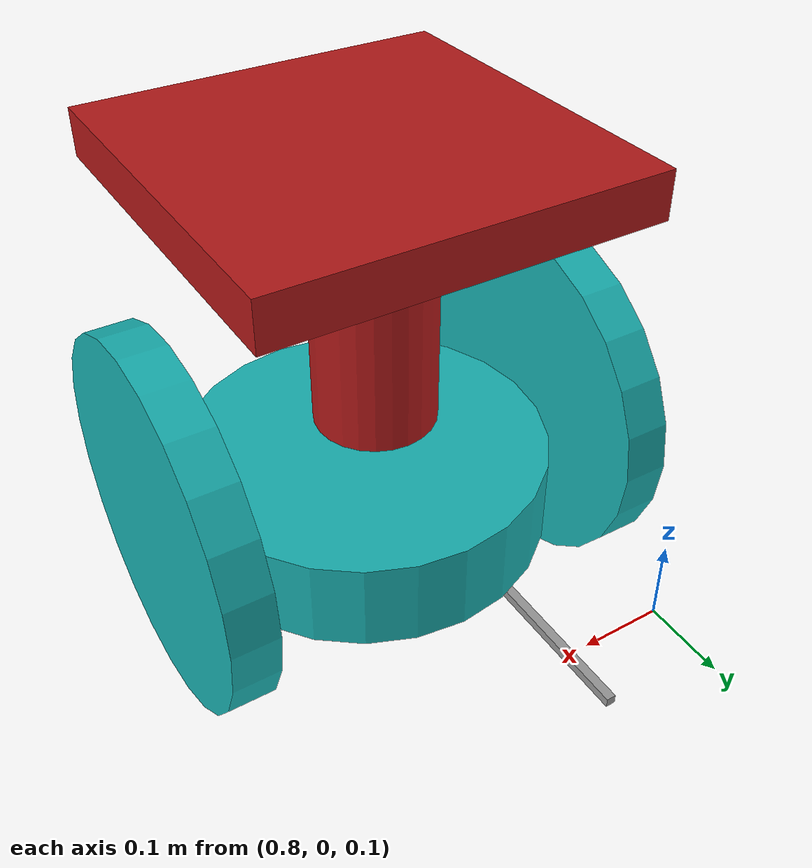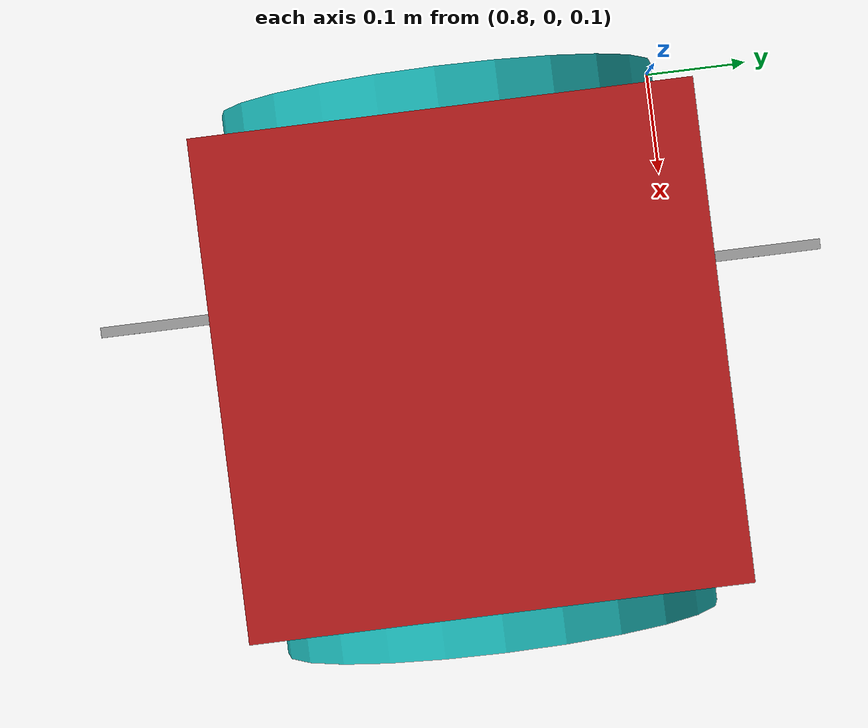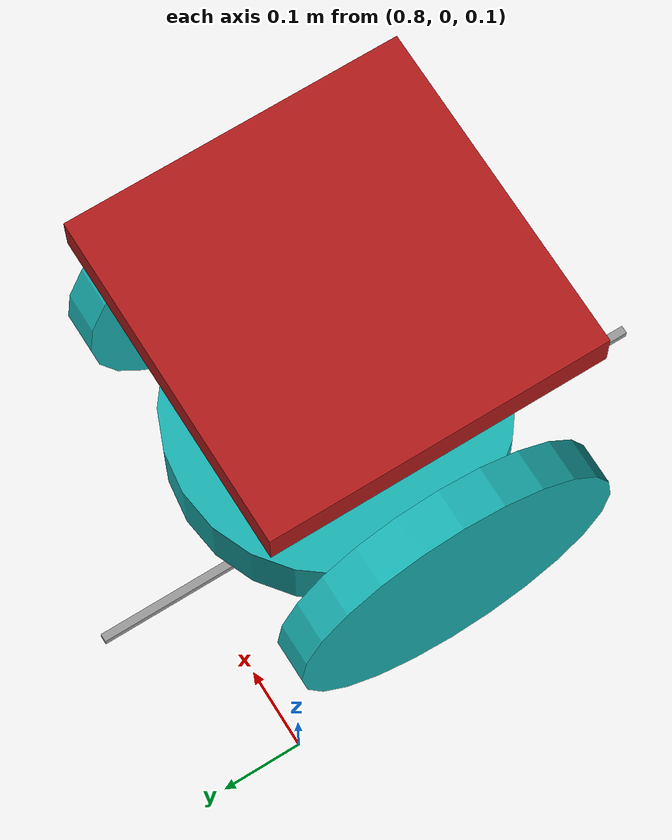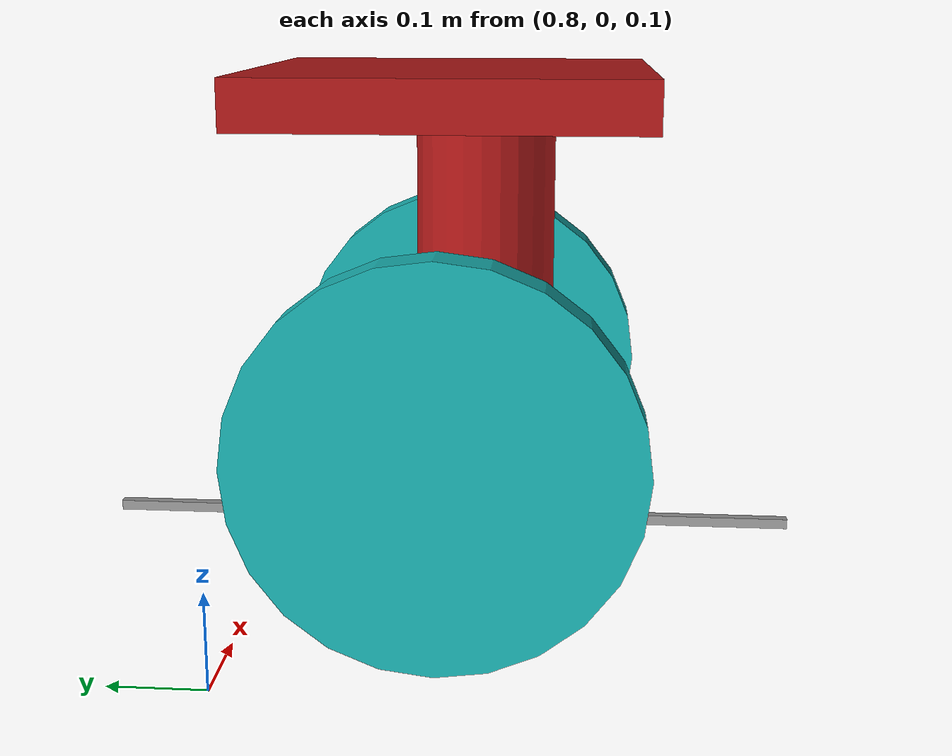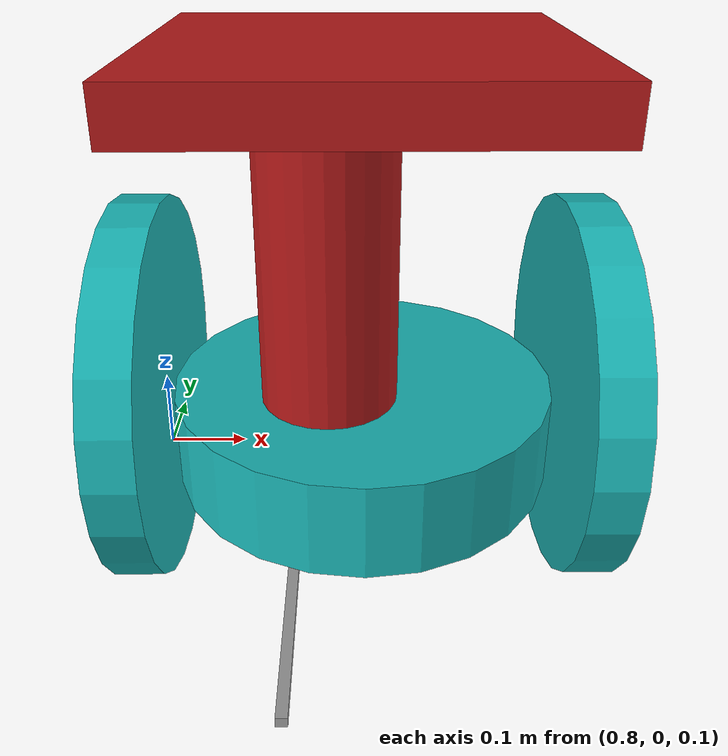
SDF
<?xml version='1.0'?>
<sdf version='1.6'>
  <model name='circlebot'>
    <link name='link_0'>
      <pose frame=''>1.06129 -0.214025 0.27147 0 -0 0</pose>
      <inertial>
        <mass>1</mass>
        <inertia>
          <ixx>0.145833</ixx>
          <ixy>0</ixy>
          <ixz>0</ixz>
          <iyy>0.145833</iyy>
          <iyz>0</iyz>
          <izz>0.125</izz>
        </inertia>
        <pose frame=''>0 0 0 0 -0 0</pose>
      </inertial>
      <self_collide>0</self_collide>
      <kinematic>0</kinematic>
      <visual name='visual'>
        <pose frame=''>0 0 0 0 -0 0</pose>
        <geometry>
          <cylinder>
            <radius>0.2</radius>
            <length>0.1</length>
          </cylinder>
        </geometry>
        <material>
          <lighting>1</lighting>
          <script>
            <uri>file://media/materials/scripts/gazebo.material</uri>
            <name>Gazebo/Grey</name>
          </script>
          <shader type='pixel'>
            <normal_map>__default__</normal_map>
          </shader>
          <ambient>0.3 0.7 0.7 1</ambient>
          <diffuse>0.1 0.7 0.7 1</diffuse>
          <specular>0.01 0.01 0.01 1</specular>
          <emissive>0 0 0 1</emissive>
        </material>
        <transparency>0</transparency>
        <cast_shadows>1</cast_shadows>
      </visual>
      <collision name='collision'>
        <laser_retro>0</laser_retro>
        <max_contacts>10</max_contacts>
        <pose frame=''>0 0 0 0 -0 0</pose>
        <geometry>
          <cylinder>
            <radius>0.2</radius>
            <length>0.1</length>
          </cylinder>
        </geometry>
        <surface>
          <friction>
            <ode>
              <mu>1</mu>
              <mu2>1</mu2>
              <fdir1>0 0 0</fdir1>
              <slip1>0</slip1>
              <slip2>0</slip2>
            </ode>
            <torsional>
              <coefficient>1</coefficient>
              <patch_radius>0</patch_radius>
              <surface_radius>0</surface_radius>
              <use_patch_radius>1</use_patch_radius>
              <ode>
                <slip>0</slip>
              </ode>
            </torsional>
          </friction>
          <bounce>
            <restitution_coefficient>0</restitution_coefficient>
            <threshold>1e+06</threshold>
          </bounce>
          <contact>
            <collide_without_contact>0</collide_without_contact>
            <collide_without_contact_bitmask>1</collide_without_contact_bitmask>
            <collide_bitmask>1</collide_bitmask>
            <ode>
              <soft_cfm>0</soft_cfm>
              <soft_erp>0.2</soft_erp>
              <kp>1e+13</kp>
              <kd>1</kd>
              <max_vel>0.01</max_vel>
              <min_depth>0</min_depth>
            </ode>
            <bullet>
              <split_impulse>1</split_impulse>
              <split_impulse_penetration_threshold>-0.01</split_impulse_penetration_threshold>
              <soft_cfm>0</soft_cfm>
              <soft_erp>0.2</soft_erp>
              <kp>1e+13</kp>
              <kd>1</kd>
            </bullet>
          </contact>
        </surface>
      </collision>
    </link>
    <link name='link_0_0'>
      <pose frame=''>0.993988 -0.214025 0.213031 -1.5708 0.010835 3e-06</pose>
      <inertial>
        <mass>1</mass>
        <inertia>
          <ixx>0.166667</ixx>
          <ixy>0</ixy>
          <ixz>0</ixz>
          <iyy>0.166667</iyy>
          <iyz>0</iyz>
          <izz>0.166667</izz>
        </inertia>
        <pose frame=''>0 0 0 0 -0 0</pose>
      </inertial>
      <self_collide>0</self_collide>
      <kinematic>0</kinematic>
      <visual name='visual'>
        <pose frame=''>0 0 0 0 -0 0</pose>
        <geometry>
          <box>
            <size>0.01 0.01 0.7</size>
          </box>
        </geometry>
        <material>
          <lighting>1</lighting>
          <script>
            <uri>file://media/materials/scripts/gazebo.material</uri>
            <name>Gazebo/Grey</name>
          </script>
          <shader type='pixel'>
            <normal_map>__default__</normal_map>
          </shader>
          <ambient>0.3 0.3 0.3 1</ambient>
          <diffuse>0.7 0.7 0.7 1</diffuse>
          <specular>0.01 0.01 0.01 1</specular>
          <emissive>0 0 0 1</emissive>
        </material>
        <transparency>0</transparency>
        <cast_shadows>1</cast_shadows>
      </visual>
      <collision name='collision'>
        <laser_retro>0</laser_retro>
        <max_contacts>10</max_contacts>
        <pose frame=''>0 0 0 0 -0 0</pose>
        <geometry>
          <box>
            <size>0.01 0.01 0.7</size>
          </box>
        </geometry>
        <surface>
          <friction>
            <ode>
              <mu>1</mu>
              <mu2>1</mu2>
              <fdir1>0 0 0</fdir1>
              <slip1>0</slip1>
              <slip2>0</slip2>
            </ode>
            <torsional>
              <coefficient>1</coefficient>
              <patch_radius>0</patch_radius>
              <surface_radius>0</surface_radius>
              <use_patch_radius>1</use_patch_radius>
              <ode>
                <slip>0</slip>
              </ode>
            </torsional>
          </friction>
          <bounce>
            <restitution_coefficient>0</restitution_coefficient>
            <threshold>1e+06</threshold>
          </bounce>
          <contact>
            <collide_without_contact>0</collide_without_contact>
            <collide_without_contact_bitmask>1</collide_without_contact_bitmask>
            <collide_bitmask>1</collide_bitmask>
            <ode>
              <soft_cfm>0</soft_cfm>
              <soft_erp>0.2</soft_erp>
              <kp>1e+13</kp>
              <kd>1</kd>
              <max_vel>0.01</max_vel>
              <min_depth>0</min_depth>
            </ode>
            <bullet>
              <split_impulse>1</split_impulse>
              <split_impulse_penetration_threshold>-0.01</split_impulse_penetration_threshold>
              <soft_cfm>0</soft_cfm>
              <soft_erp>0.2</soft_erp>
              <kp>1e+13</kp>
              <kd>1</kd>
            </bullet>
          </contact>
        </surface>
      </collision>
    </link>
    <link name='link_2'>
      <pose frame=''>1.28631 -0.214025 0.316464 -0.000138 1.5707 -0.000138</pose>
      <inertial>
        <mass>1</mass>
        <inertia>
          <ixx>0.145833</ixx>
          <ixy>0</ixy>
          <ixz>0</ixz>
          <iyy>0.145833</iyy>
          <iyz>0</iyz>
          <izz>0.125</izz>
        </inertia>
        <pose frame=''>0 0 0 0 -0 0</pose>
      </inertial>
      <self_collide>0</self_collide>
      <kinematic>0</kinematic>
      <visual name='visual'>
        <pose frame=''>0 0 0 0 -0 0</pose>
        <geometry>
          <cylinder>
            <radius>0.2</radius>
            <length>0.05</length>
          </cylinder>
        </geometry>
        <material>
          <lighting>1</lighting>
          <script>
            <uri>file://media/materials/scripts/gazebo.material</uri>
            <name>Gazebo/Grey</name>
          </script>
          <shader type='pixel'>
            <normal_map>__default__</normal_map>
          </shader>
          <ambient>0.3 0.7 0.7 1</ambient>
          <diffuse>0.1 0.7 0.7 1</diffuse>
          <specular>0.01 0.01 0.01 1</specular>
          <emissive>0 0 0 1</emissive>
        </material>
        <transparency>0</transparency>
        <cast_shadows>1</cast_shadows>
      </visual>
      <collision name='collision'>
        <laser_retro>0</laser_retro>
        <max_contacts>10</max_contacts>
        <pose frame=''>0 0 0 0 -0 0</pose>
        <geometry>
          <cylinder>
            <radius>0.2</radius>
            <length>0.05</length>
          </cylinder>
        </geometry>
        <surface>
          <friction>
            <ode>
              <mu>1</mu>
              <mu2>1</mu2>
              <fdir1>0 0 0</fdir1>
              <slip1>0</slip1>
              <slip2>0</slip2>
            </ode>
            <torsional>
              <coefficient>1</coefficient>
              <patch_radius>0</patch_radius>
              <surface_radius>0</surface_radius>
              <use_patch_radius>1</use_patch_radius>
              <ode>
                <slip>0</slip>
              </ode>
            </torsional>
          </friction>
          <bounce>
            <restitution_coefficient>0</restitution_coefficient>
            <threshold>1e+06</threshold>
          </bounce>
          <contact>
            <collide_without_contact>0</collide_without_contact>
            <collide_without_contact_bitmask>1</collide_without_contact_bitmask>
            <collide_bitmask>1</collide_bitmask>
            <ode>
              <soft_cfm>0</soft_cfm>
              <soft_erp>0.2</soft_erp>
              <kp>1e+13</kp>
              <kd>1</kd>
              <max_vel>0.01</max_vel>
              <min_depth>0</min_depth>
            </ode>
            <bullet>
              <split_impulse>1</split_impulse>
              <split_impulse_penetration_threshold>-0.01</split_impulse_penetration_threshold>
              <soft_cfm>0</soft_cfm>
              <soft_erp>0.2</soft_erp>
              <kp>1e+13</kp>
              <kd>1</kd>
            </bullet>
          </contact>
        </surface>
      </collision>
    </link>
    <link name='link_2_clone'>
      <pose frame=''>0.836287 -0.214025 0.31647 -0.000138 1.5707 -0.000138</pose>
      <inertial>
        <mass>1</mass>
        <inertia>
          <ixx>0.145833</ixx>
          <ixy>0</ixy>
          <ixz>0</ixz>
          <iyy>0.145833</iyy>
          <iyz>0</iyz>
          <izz>0.125</izz>
        </inertia>
        <pose frame=''>0 0 0 0 -0 0</pose>
      </inertial>
      <self_collide>0</self_collide>
      <kinematic>0</kinematic>
      <visual name='visual'>
        <pose frame=''>0 0 0 0 -0 0</pose>
        <geometry>
          <cylinder>
            <radius>0.2</radius>
            <length>0.05</length>
          </cylinder>
        </geometry>
        <material>
          <lighting>1</lighting>
          <script>
            <uri>file://media/materials/scripts/gazebo.material</uri>
            <name>Gazebo/Grey</name>
          </script>
          <shader type='pixel'>
            <normal_map>__default__</normal_map>
          </shader>
          <ambient>0.3 0.7 0.7 1</ambient>
          <diffuse>0.1 0.7 0.7 1</diffuse>
          <specular>0.01 0.01 0.01 1</specular>
          <emissive>0 0 0 1</emissive>
        </material>
        <transparency>0</transparency>
        <cast_shadows>1</cast_shadows>
      </visual>
      <collision name='collision'>
        <laser_retro>0</laser_retro>
        <max_contacts>10</max_contacts>
        <pose frame=''>0 0 0 0 -0 0</pose>
        <geometry>
          <cylinder>
            <radius>0.2</radius>
            <length>0.05</length>
          </cylinder>
        </geometry>
        <surface>
          <friction>
            <ode>
              <mu>1</mu>
              <mu2>1</mu2>
              <fdir1>0 0 0</fdir1>
              <slip1>0</slip1>
              <slip2>0</slip2>
            </ode>
            <torsional>
              <coefficient>1</coefficient>
              <patch_radius>0</patch_radius>
              <surface_radius>0</surface_radius>
              <use_patch_radius>1</use_patch_radius>
              <ode>
                <slip>0</slip>
              </ode>
            </torsional>
          </friction>
          <bounce>
            <restitution_coefficient>0</restitution_coefficient>
            <threshold>1e+06</threshold>
          </bounce>
          <contact>
            <collide_without_contact>0</collide_without_contact>
            <collide_without_contact_bitmask>1</collide_without_contact_bitmask>
            <collide_bitmask>1</collide_bitmask>
            <ode>
              <soft_cfm>0</soft_cfm>
              <soft_erp>0.2</soft_erp>
              <kp>1e+13</kp>
              <kd>1</kd>
              <max_vel>0.01</max_vel>
              <min_depth>0</min_depth>
            </ode>
            <bullet>
              <split_impulse>1</split_impulse>
              <split_impulse_penetration_threshold>-0.01</split_impulse_penetration_threshold>
              <soft_cfm>0</soft_cfm>
              <soft_erp>0.2</soft_erp>
              <kp>1e+13</kp>
              <kd>1</kd>
            </bullet>
          </contact>
        </surface>
      </collision>
    </link>
    <link name='link_3'>
      <pose frame=''>1.02629 -0.249025 0.42147 0 -0 0</pose>
      <inertial>
        <mass>1</mass>
        <inertia>
          <ixx>0.145833</ixx>
          <ixy>0</ixy>
          <ixz>0</ixz>
          <iyy>0.145833</iyy>
          <iyz>0</iyz>
          <izz>0.125</izz>
        </inertia>
        <pose frame=''>0 0 0 0 -0 0</pose>
      </inertial>
      <self_collide>0</self_collide>
      <kinematic>0</kinematic>
      <visual name='visual'>
        <pose frame=''>0 0 0 0 -0 0</pose>
        <geometry>
          <cylinder>
            <radius>0.07</radius>
            <length>0.4</length>
          </cylinder>
        </geometry>
        <material>
          <lighting>1</lighting>
          <script>
            <uri>file://media/materials/scripts/gazebo.material</uri>
            <name>Gazebo/Grey</name>
          </script>
          <shader type='pixel'>
            <normal_map>__default__</normal_map>
          </shader>
          <ambient>0.7 0.1 0.1 1</ambient>
          <diffuse>0.7 0.1 0.1 1</diffuse>
          <specular>0.01 0.01 0.01 1</specular>
          <emissive>0 0 0 1</emissive>
        </material>
        <transparency>0</transparency>
        <cast_shadows>1</cast_shadows>
      </visual>
      <collision name='collision'>
        <laser_retro>0</laser_retro>
        <max_contacts>10</max_contacts>
        <pose frame=''>0 0 0 0 -0 0</pose>
        <geometry>
          <cylinder>
            <radius>0.07</radius>
            <length>0.4</length>
          </cylinder>
        </geometry>
        <surface>
          <friction>
            <ode>
              <mu>1</mu>
              <mu2>1</mu2>
              <fdir1>0 0 0</fdir1>
              <slip1>0</slip1>
              <slip2>0</slip2>
            </ode>
            <torsional>
              <coefficient>1</coefficient>
              <patch_radius>0</patch_radius>
              <surface_radius>0</surface_radius>
              <use_patch_radius>1</use_patch_radius>
              <ode>
                <slip>0</slip>
              </ode>
            </torsional>
          </friction>
          <bounce>
            <restitution_coefficient>0</restitution_coefficient>
            <threshold>1e+06</threshold>
          </bounce>
          <contact>
            <collide_without_contact>0</collide_without_contact>
            <collide_without_contact_bitmask>1</collide_without_contact_bitmask>
            <collide_bitmask>1</collide_bitmask>
            <ode>
              <soft_cfm>0</soft_cfm>
              <soft_erp>0.2</soft_erp>
              <kp>1e+13</kp>
              <kd>1</kd>
              <max_vel>0.01</max_vel>
              <min_depth>0</min_depth>
            </ode>
            <bullet>
              <split_impulse>1</split_impulse>
              <split_impulse_penetration_threshold>-0.01</split_impulse_penetration_threshold>
              <soft_cfm>0</soft_cfm>
              <soft_erp>0.2</soft_erp>
              <kp>1e+13</kp>
              <kd>1</kd>
            </bullet>
          </contact>
        </surface>
      </collision>
    </link>
    <link name='link_4'>
      <pose frame=''>1.06129 -0.214025 0.64647 0 -0 0</pose>
      <inertial>
        <mass>1</mass>
        <inertia>
          <ixx>0.166667</ixx>
          <ixy>0</ixy>
          <ixz>0</ixz>
          <iyy>0.166667</iyy>
          <iyz>0</iyz>
          <izz>0.166667</izz>
        </inertia>
        <pose frame=''>0 0 0 0 -0 0</pose>
      </inertial>
      <self_collide>0</self_collide>
      <kinematic>0</kinematic>
      <visual name='visual'>
        <pose frame=''>0 0 0 0 -0 0</pose>
        <geometry>
          <box>
            <size>0.4 0.4 0.05</size>
          </box>
        </geometry>
        <material>
          <lighting>1</lighting>
          <script>
            <uri>file://media/materials/scripts/gazebo.material</uri>
            <name>Gazebo/Grey</name>
          </script>
          <shader type='pixel'>
            <normal_map>__default__</normal_map>
          </shader>
          <ambient>0.7 0.1 0.1 1</ambient>
          <diffuse>0.7 0.1 0.1 1</diffuse>
          <specular>0.01 0.01 0.01 1</specular>
          <emissive>0 0 0 1</emissive>
        </material>
        <transparency>0</transparency>
        <cast_shadows>1</cast_shadows>
      </visual>
      <collision name='collision'>
        <laser_retro>0</laser_retro>
        <max_contacts>10</max_contacts>
        <pose frame=''>0 0 0 0 -0 0</pose>
        <geometry>
          <box>
            <size>0.4 0.4 0.05</size>
          </box>
        </geometry>
        <surface>
          <friction>
            <ode>
              <mu>1</mu>
              <mu2>1</mu2>
              <fdir1>0 0 0</fdir1>
              <slip1>0</slip1>
              <slip2>0</slip2>
            </ode>
            <torsional>
              <coefficient>1</coefficient>
              <patch_radius>0</patch_radius>
              <surface_radius>0</surface_radius>
              <use_patch_radius>1</use_patch_radius>
              <ode>
                <slip>0</slip>
              </ode>
            </torsional>
          </friction>
          <bounce>
            <restitution_coefficient>0</restitution_coefficient>
            <threshold>1e+06</threshold>
          </bounce>
          <contact>
            <collide_without_contact>0</collide_without_contact>
            <collide_without_contact_bitmask>1</collide_without_contact_bitmask>
            <collide_bitmask>1</collide_bitmask>
            <ode>
              <soft_cfm>0</soft_cfm>
              <soft_erp>0.2</soft_erp>
              <kp>1e+13</kp>
              <kd>1</kd>
              <max_vel>0.01</max_vel>
              <min_depth>0</min_depth>
            </ode>
            <bullet>
              <split_impulse>1</split_impulse>
              <split_impulse_penetration_threshold>-0.01</split_impulse_penetration_threshold>
              <soft_cfm>0</soft_cfm>
              <soft_erp>0.2</soft_erp>
              <kp>1e+13</kp>
              <kd>1</kd>
            </bullet>
          </contact>
        </surface>
      </collision>
    </link>
    <joint name='link_0_JOINT_0_0' type='fixed'>
      <parent>link_0</parent>
      <child>link_0_0</child>
      <pose frame=''>0 0 0 0 -0 0</pose>
      <physics>
        <ode>
          <limit>
            <cfm>0</cfm>
            <erp>0.2</erp>
          </limit>
          <suspension>
            <cfm>0</cfm>
            <erp>0.2</erp>
          </suspension>
        </ode>
      </physics>
    </joint>
    <joint name='link_0_JOINT_0' type='revolute'>
      <parent>link_0</parent>
      <child>link_2_clone</child>
      <pose frame=''>0 0 0 0 -0 0</pose>
      <axis>
        <xyz>0 0 1</xyz>
        <use_parent_model_frame>0</use_parent_model_frame>
        <limit>
          <lower>-1.79769e+308</lower>
          <upper>1.79769e+308</upper>
          <effort>-1</effort>
          <velocity>-1</velocity>
        </limit>
        <dynamics>
          <spring_reference>0</spring_reference>
          <spring_stiffness>0</spring_stiffness>
          <damping>0</damping>
          <friction>0</friction>
        </dynamics>
      </axis>
      <physics>
        <ode>
          <limit>
            <cfm>0</cfm>
            <erp>0.2</erp>
          </limit>
          <suspension>
            <cfm>0</cfm>
            <erp>0.2</erp>
          </suspension>
        </ode>
      </physics>
    </joint>
    <joint name='link_0_JOINT_1' type='revolute'>
      <parent>link_0</parent>
      <child>link_2</child>
      <pose frame=''>0 0 0 0 -0 0</pose>
      <axis>
        <xyz>0 0 1</xyz>
        <use_parent_model_frame>0</use_parent_model_frame>
        <limit>
          <lower>-1.79769e+308</lower>
          <upper>1.79769e+308</upper>
          <effort>-1</effort>
          <velocity>-1</velocity>
        </limit>
        <dynamics>
          <spring_reference>0</spring_reference>
          <spring_stiffness>0</spring_stiffness>
          <damping>0</damping>
          <friction>0</friction>
        </dynamics>
      </axis>
      <physics>
        <ode>
          <limit>
            <cfm>0</cfm>
            <erp>0.2</erp>
          </limit>
          <suspension>
            <cfm>0</cfm>
            <erp>0.2</erp>
          </suspension>
        </ode>
      </physics>
    </joint>
    <joint name='link_0_JOINT_2' type='fixed'>
      <parent>link_0</parent>
      <child>link_3</child>
      <pose frame=''>0 0 0 0 -0 0</pose>
      <physics>
        <ode>
          <limit>
            <cfm>0</cfm>
            <erp>0.2</erp>
          </limit>
          <suspension>
            <cfm>0</cfm>
            <erp>0.2</erp>
          </suspension>
        </ode>
      </physics>
    </joint>
    <joint name='link_3_JOINT_3' type='fixed'>
      <parent>link_3</parent>
      <child>link_4</child>
      <pose frame=''>0 0 0 0 -0 0</pose>
      <physics>
        <ode>
          <limit>
            <cfm>0</cfm>
            <erp>0.2</erp>
          </limit>
          <suspension>
            <cfm>0</cfm>
            <erp>0.2</erp>
          </suspension>
        </ode>
      </physics>
    </joint>
    <static>0</static>
    <allow_auto_disable>1</allow_auto_disable>
  </model>
</sdf>
